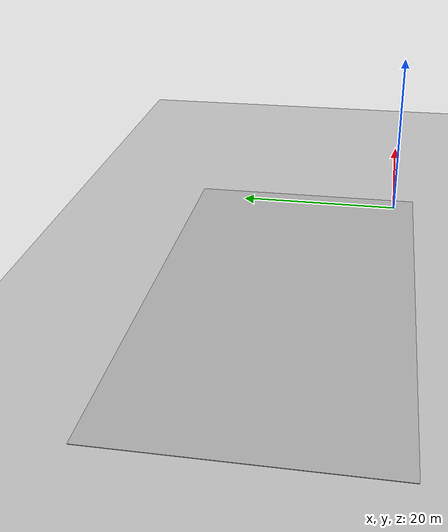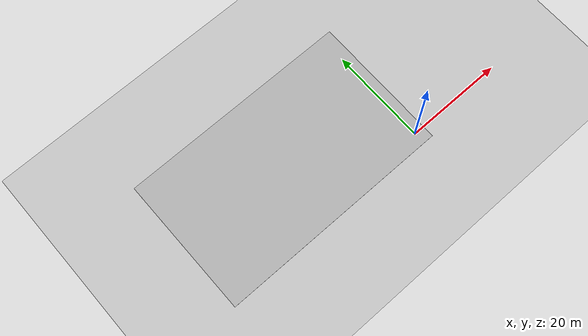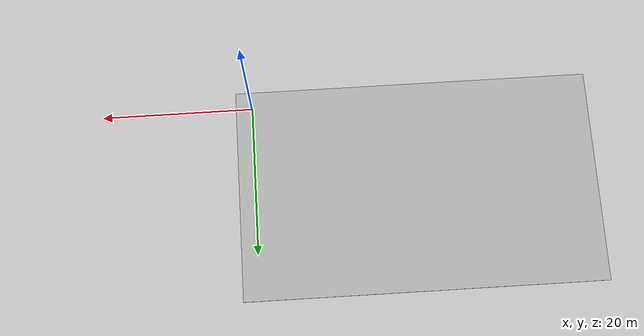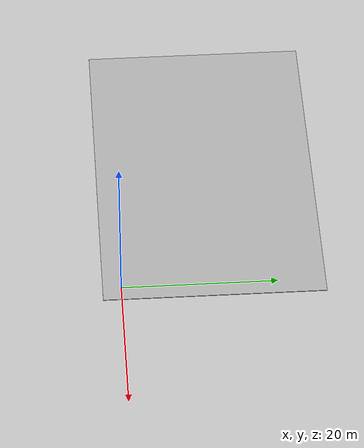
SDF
<sdf version="1.7">
 <world name="default">
  <light name="sun" type="directional">
   <pose>0 0 10 0 -0 0</pose>
   <diffuse>0.8 0.8 0.8 1</diffuse>
   <specular>0.2 0.2 0.2 1</specular>
   <attenuation>
    <range>1000</range>
    <constant>0.9</constant>
    <linear>0.01</linear>
    <quadratic>0.001</quadratic>
   </attenuation>
   <direction>-0.5 0.1 -0.9</direction>
   <spot><inner_angle>0</inner_angle><outer_angle>0</outer_angle><falloff>0</falloff></spot>
  </light>
  <model name="ground_plane">
   <static>1</static>
   <link name="link">
    <collision name="collision">
     <geometry><plane><normal>0 0 1</normal><size>100 100</size></plane></geometry>
     <surface>
      <contact><collide_bitmask>65535</collide_bitmask></contact>
      <friction><ode><mu>100</mu><mu2>50</mu2></ode></friction>
     </surface>
    </collision>
    <visual name="visual">
     <cast_shadows>0</cast_shadows>
     <geometry><plane><normal>0 0 1</normal><size>100 100</size></plane></geometry>
     <material>
      <script><uri>file://media/materials/scripts/gazebo.material</uri><name>Gazebo/Grey</name></script>
     </material>
    </visual>
   </link>
  </model>
  <gravity>0 0 -9.8</gravity>
  <magnetic_field>6e-06 2.3e-05 -4.2e-05</magnetic_field>
  <atmosphere type="adiabatic"/>
  <physics type="ode">
   <max_step_size>0.001</max_step_size>
   <real_time_factor>1</real_time_factor>
   <real_time_update_rate>1000</real_time_update_rate>
  </physics>
  <scene><ambient>0.4 0.4 0.4 1</ambient><background>0.7 0.7 0.7 1</background><shadows>1</shadows></scene>
  <spherical_coordinates>
   <surface_model>EARTH_WGS84</surface_model>
   <latitude_deg>0</latitude_deg>
   <longitude_deg>0</longitude_deg>
   <elevation>0</elevation>
   <heading_deg>0</heading_deg>
  </spherical_coordinates>
  <model name="igvc_track2">
   <static>1</static>
   <link name="link">
    <collision name="collision"><geometry><box><size>28.4922 47.236 0.05</size></box></geometry></collision>
    <visual name="visual">
     <cast_shadows>0</cast_shadows>
     <geometry><box><size>28.4922 47.236 0.05</size></box></geometry>
     <material>
      <script>
       <uri>model://igvc_track2/materials/scripts</uri>
       <uri>model://igvc_track2/materials/textures</uri>
       <name>vrc/ground</name>
      </script>
     </material>
    </visual>
   </link>
   <link name="link2">
    <collision name="collision"><geometry><box><size>28.4922 47.236 0.05</size></box></geometry></collision>
    <visual name="visual">
     <cast_shadows>0</cast_shadows>
     <geometry><box><size>28.4922 47.236 0.07</size></box></geometry>
     <material>
      <script>
       <uri>model://igvc_track2/materials/scripts</uri>
       <uri>model://igvc_track2/materials/textures</uri>
       <name>vrc/track</name>
      </script>
     </material>
    </visual>
   </link>
   <pose>-21.4675 11.8184 0 0 -0 1.5708</pose>
  </model>
 </world>
</sdf>
